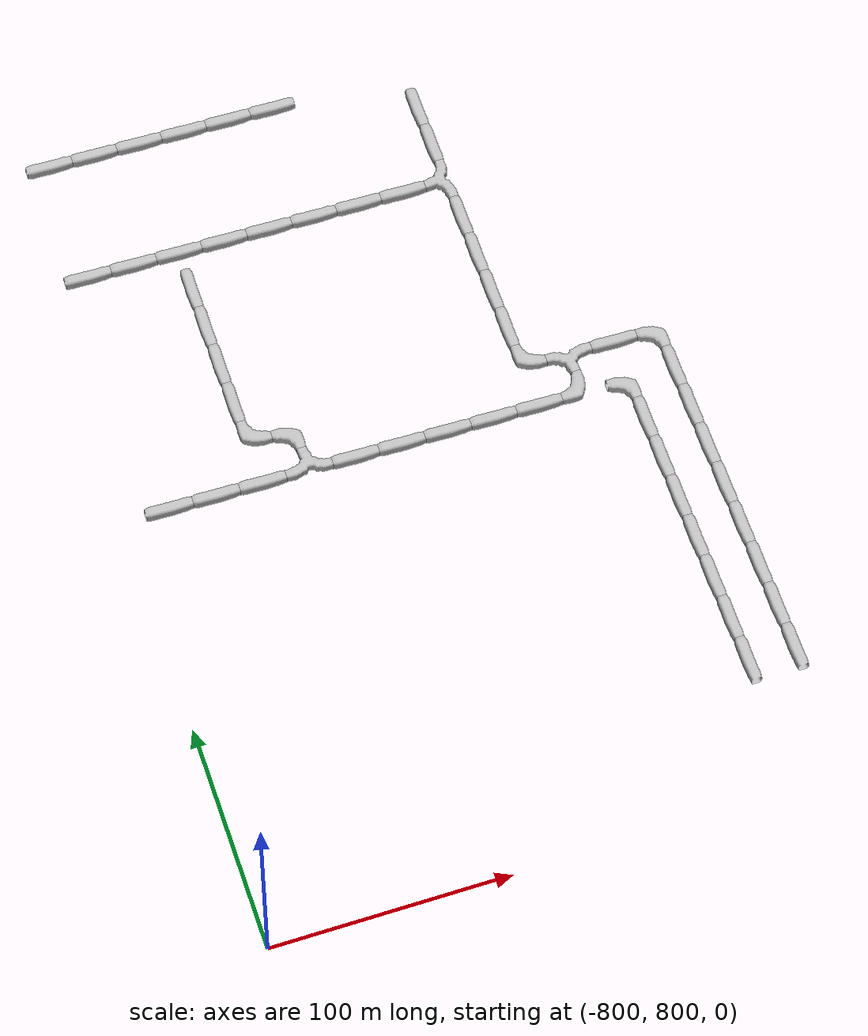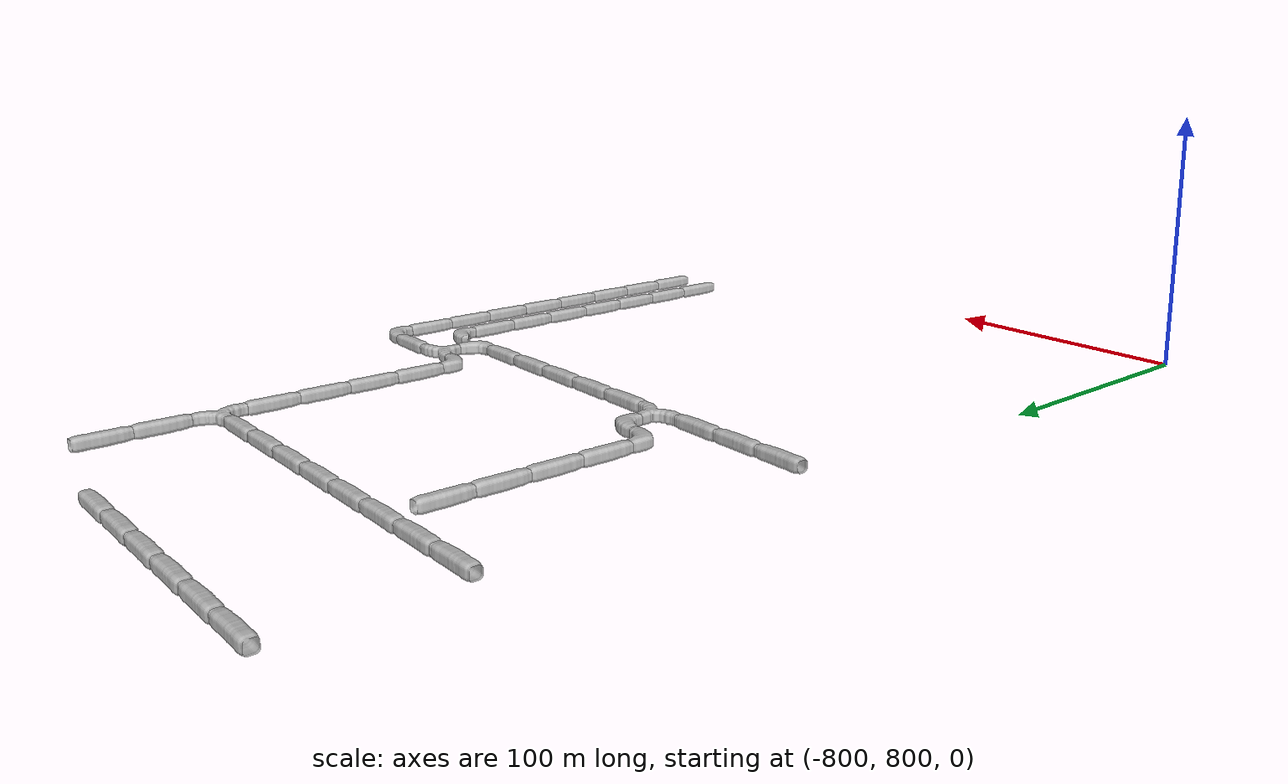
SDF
<sdf version="1.6">
 <world name="cave_32000">
  <include>
   <static>true</static>
   <name>cave_-29_43</name>
   <pose>-580 860 0 0 0 0.0</pose>
   <uri>model://cave_straight_20m</uri>
  </include>
  <include>
   <static>true</static>
   <name>cave_-29_44</name>
   <pose>-580 880 0 0 0 0.0</pose>
   <uri>model://cave_straight_20m</uri>
  </include>
  <include>
   <static>true</static>
   <name>cave_-29_45</name>
   <pose>-580 900 0 0 0 0.0</pose>
   <uri>model://cave_straight_20m</uri>
  </include>
  <include>
   <static>true</static>
   <name>cave_-29_46</name>
   <pose>-580 920 0 0 0 0.0</pose>
   <uri>model://cave_straight_20m</uri>
  </include>
  <include>
   <static>true</static>
   <name>cave_-29_47</name>
   <pose>-580 940 0 0 0 0.0</pose>
   <uri>model://cave_straight_20m</uri>
  </include>
  <include>
   <static>true</static>
   <name>cave_-29_48</name>
   <pose>-580 960 0 0 0 0.0</pose>
   <uri>model://cave_straight_20m</uri>
  </include>
  <include>
   <static>true</static>
   <name>cave_-29_49</name>
   <pose>-580 980 0 0 0 0.0</pose>
   <uri>model://cave_straight_20m</uri>
  </include>
  <include>
   <static>true</static>
   <name>cave_-29_50</name>
   <pose>-580 1000 0 0 0 3.141592653589793</pose>
   <uri>model://cave_L_20m</uri>
  </include>
  <include>
   <static>true</static>
   <name>cave_-28_43</name>
   <pose>-560 860 0 0 0 0.0</pose>
   <uri>model://cave_straight_20m</uri>
  </include>
  <include>
   <static>true</static>
   <name>cave_-28_44</name>
   <pose>-560 880 0 0 0 0.0</pose>
   <uri>model://cave_straight_20m</uri>
  </include>
  <include>
   <static>true</static>
   <name>cave_-28_45</name>
   <pose>-560 900 0 0 0 0.0</pose>
   <uri>model://cave_straight_20m</uri>
  </include>
  <include>
   <static>true</static>
   <name>cave_-28_46</name>
   <pose>-560 920 0 0 0 0.0</pose>
   <uri>model://cave_straight_20m</uri>
  </include>
  <include>
   <static>true</static>
   <name>cave_-28_47</name>
   <pose>-560 940 0 0 0 0.0</pose>
   <uri>model://cave_straight_20m</uri>
  </include>
  <include>
   <static>true</static>
   <name>cave_-28_48</name>
   <pose>-560 960 0 0 0 0.0</pose>
   <uri>model://cave_straight_20m</uri>
  </include>
  <include>
   <static>true</static>
   <name>cave_-28_49</name>
   <pose>-560 980 0 0 0 0.0</pose>
   <uri>model://cave_straight_20m</uri>
  </include>
  <include>
   <static>true</static>
   <name>cave_-28_50</name>
   <pose>-560 1000 0 0 0 0.0</pose>
   <uri>model://cave_straight_20m</uri>
  </include>
  <include>
   <static>true</static>
   <name>cave_-28_51</name>
   <pose>-560 1020 0 0 0 3.141592653589793</pose>
   <uri>model://cave_L_20m</uri>
  </include>
  <include>
   <static>true</static>
   <name>cave_-29_51</name>
   <pose>-580 1020 0 0 0 1.5707963267948966</pose>
   <uri>model://cave_straight_20m</uri>
  </include>
  <include>
   <static>true</static>
   <name>cave_-30_51</name>
   <pose>-600 1020 0 0 0 3.141592653589793</pose>
   <uri>model://cave_3way_20m</uri>
  </include>
  <include>
   <static>true</static>
   <name>cave_-30_50</name>
   <pose>-600 1000 0 0 0 1.5707963267948966</pose>
   <uri>model://cave_L_20m</uri>
  </include>
  <include>
   <static>true</static>
   <name>cave_-31_50</name>
   <pose>-620 1000 0 0 0 1.5707963267948966</pose>
   <uri>model://cave_straight_20m</uri>
  </include>
  <include>
   <static>true</static>
   <name>cave_-32_50</name>
   <pose>-640 1000 0 0 0 1.5707963267948966</pose>
   <uri>model://cave_straight_20m</uri>
  </include>
  <include>
   <static>true</static>
   <name>cave_-33_50</name>
   <pose>-660 1000 0 0 0 1.5707963267948966</pose>
   <uri>model://cave_straight_20m</uri>
  </include>
  <include>
   <static>true</static>
   <name>cave_-34_50</name>
   <pose>-680 1000 0 0 0 1.5707963267948966</pose>
   <uri>model://cave_straight_20m</uri>
  </include>
  <include>
   <static>true</static>
   <name>cave_-35_50</name>
   <pose>-700 1000 0 0 0 1.5707963267948966</pose>
   <uri>model://cave_straight_20m</uri>
  </include>
  <include>
   <static>true</static>
   <name>cave_-36_50</name>
   <pose>-720 1000 0 0 0 0.0</pose>
   <uri>model://cave_3way_20m</uri>
  </include>
  <include>
   <static>true</static>
   <name>cave_-37_50</name>
   <pose>-740 1000 0 0 0 1.5707963267948966</pose>
   <uri>model://cave_straight_20m</uri>
  </include>
  <include>
   <static>true</static>
   <name>cave_-38_50</name>
   <pose>-760 1000 0 0 0 1.5707963267948966</pose>
   <uri>model://cave_straight_20m</uri>
  </include>
  <include>
   <static>true</static>
   <name>cave_-39_50</name>
   <pose>-780 1000 0 0 0 1.5707963267948966</pose>
   <uri>model://cave_straight_20m</uri>
  </include>
  <include>
   <static>true</static>
   <name>cave_-36_51</name>
   <pose>-720 1020 0 0 0 3.141592653589793</pose>
   <uri>model://cave_L_20m</uri>
  </include>
  <include>
   <static>true</static>
   <name>cave_-37_51</name>
   <pose>-740 1020 0 0 0 0.0</pose>
   <uri>model://cave_L_20m</uri>
  </include>
  <include>
   <static>true</static>
   <name>cave_-37_52</name>
   <pose>-740 1040 0 0 0 0.0</pose>
   <uri>model://cave_straight_20m</uri>
  </include>
  <include>
   <static>true</static>
   <name>cave_-37_53</name>
   <pose>-740 1060 0 0 0 0.0</pose>
   <uri>model://cave_straight_20m</uri>
  </include>
  <include>
   <static>true</static>
   <name>cave_-37_54</name>
   <pose>-740 1080 0 0 0 0.0</pose>
   <uri>model://cave_straight_20m</uri>
  </include>
  <include>
   <static>true</static>
   <name>cave_-37_55</name>
   <pose>-740 1100 0 0 0 0.0</pose>
   <uri>model://cave_straight_20m</uri>
  </include>
  <include>
   <static>true</static>
   <name>cave_-31_51</name>
   <pose>-620 1020 0 0 0 0.0</pose>
   <uri>model://cave_L_20m</uri>
  </include>
  <include>
   <static>true</static>
   <name>cave_-31_52</name>
   <pose>-620 1040 0 0 0 0.0</pose>
   <uri>model://cave_straight_20m</uri>
  </include>
  <include>
   <static>true</static>
   <name>cave_-31_53</name>
   <pose>-620 1060 0 0 0 0.0</pose>
   <uri>model://cave_straight_20m</uri>
  </include>
  <include>
   <static>true</static>
   <name>cave_-31_54</name>
   <pose>-620 1080 0 0 0 0.0</pose>
   <uri>model://cave_straight_20m</uri>
  </include>
  <include>
   <static>true</static>
   <name>cave_-31_55</name>
   <pose>-620 1100 0 0 0 0.0</pose>
   <uri>model://cave_straight_20m</uri>
  </include>
  <include>
   <static>true</static>
   <name>cave_-31_56</name>
   <pose>-620 1120 0 0 0 1.5707963267948966</pose>
   <uri>model://cave_3way_20m</uri>
  </include>
  <include>
   <static>true</static>
   <name>cave_-32_56</name>
   <pose>-640 1120 0 0 0 1.5707963267948966</pose>
   <uri>model://cave_straight_20m</uri>
  </include>
  <include>
   <static>true</static>
   <name>cave_-33_56</name>
   <pose>-660 1120 0 0 0 1.5707963267948966</pose>
   <uri>model://cave_straight_20m</uri>
  </include>
  <include>
   <static>true</static>
   <name>cave_-34_56</name>
   <pose>-680 1120 0 0 0 1.5707963267948966</pose>
   <uri>model://cave_straight_20m</uri>
  </include>
  <include>
   <static>true</static>
   <name>cave_-35_56</name>
   <pose>-700 1120 0 0 0 1.5707963267948966</pose>
   <uri>model://cave_straight_20m</uri>
  </include>
  <include>
   <static>true</static>
   <name>cave_-36_56</name>
   <pose>-720 1120 0 0 0 1.5707963267948966</pose>
   <uri>model://cave_straight_20m</uri>
  </include>
  <include>
   <static>true</static>
   <name>cave_-37_56</name>
   <pose>-740 1120 0 0 0 1.5707963267948966</pose>
   <uri>model://cave_straight_20m</uri>
  </include>
  <include>
   <static>true</static>
   <name>cave_-38_56</name>
   <pose>-760 1120 0 0 0 1.5707963267948966</pose>
   <uri>model://cave_straight_20m</uri>
  </include>
  <include>
   <static>true</static>
   <name>cave_-39_56</name>
   <pose>-780 1120 0 0 0 1.5707963267948966</pose>
   <uri>model://cave_straight_20m</uri>
  </include>
  <include>
   <static>true</static>
   <name>cave_-31_57</name>
   <pose>-620 1140 0 0 0 0.0</pose>
   <uri>model://cave_straight_20m</uri>
  </include>
  <include>
   <static>true</static>
   <name>cave_-31_58</name>
   <pose>-620 1160 0 0 0 0.0</pose>
   <uri>model://cave_straight_20m</uri>
  </include>
  <include>
   <static>true</static>
   <name>cave_-34_59</name>
   <pose>-680 1180 0 0 0 1.5707963267948966</pose>
   <uri>model://cave_straight_20m</uri>
  </include>
  <include>
   <static>true</static>
   <name>cave_-35_59</name>
   <pose>-700 1180 0 0 0 1.5707963267948966</pose>
   <uri>model://cave_straight_20m</uri>
  </include>
  <include>
   <static>true</static>
   <name>cave_-36_59</name>
   <pose>-720 1180 0 0 0 1.5707963267948966</pose>
   <uri>model://cave_straight_20m</uri>
  </include>
  <include>
   <static>true</static>
   <name>cave_-37_59</name>
   <pose>-740 1180 0 0 0 1.5707963267948966</pose>
   <uri>model://cave_straight_20m</uri>
  </include>
  <include>
   <static>true</static>
   <name>cave_-38_59</name>
   <pose>-760 1180 0 0 0 1.5707963267948966</pose>
   <uri>model://cave_straight_20m</uri>
  </include>
  <include>
   <static>true</static>
   <name>cave_-39_59</name>
   <pose>-780 1180 0 0 0 1.5707963267948966</pose>
   <uri>model://cave_straight_20m</uri>
  </include>
 </world>
</sdf>
